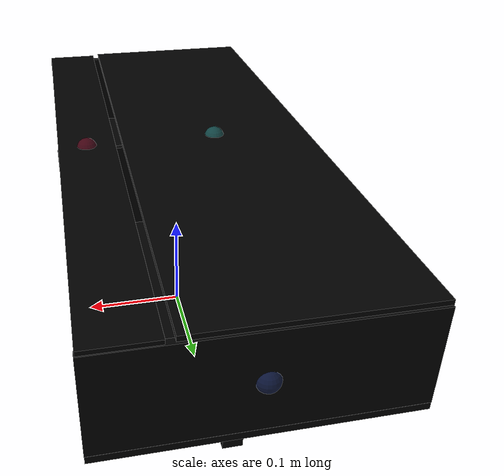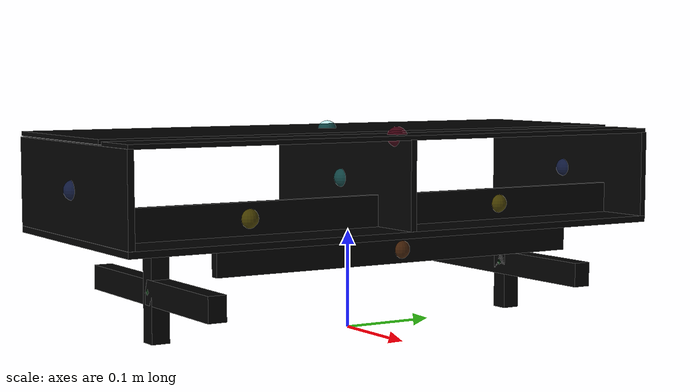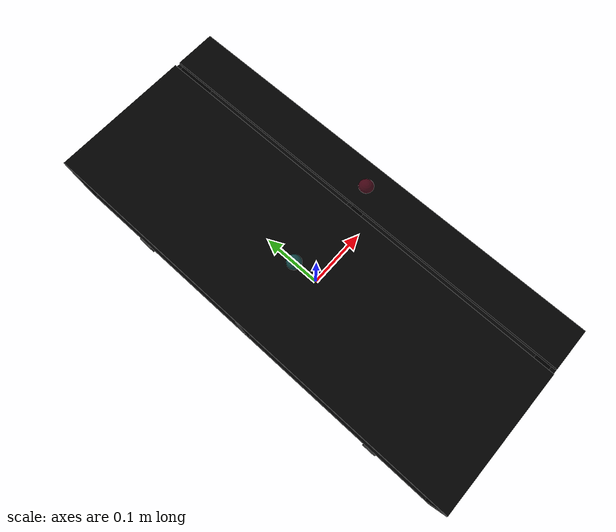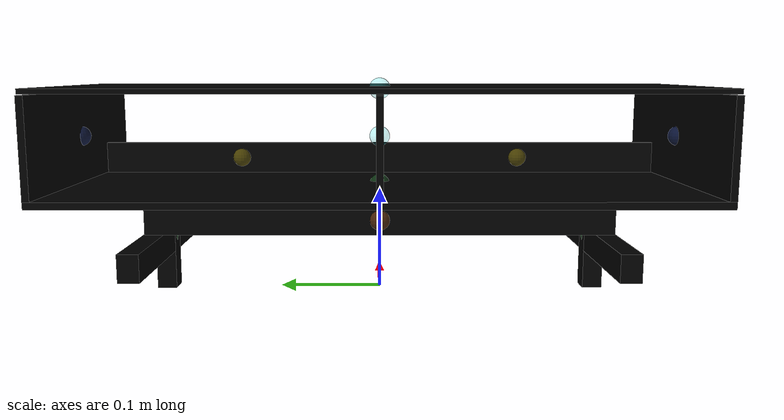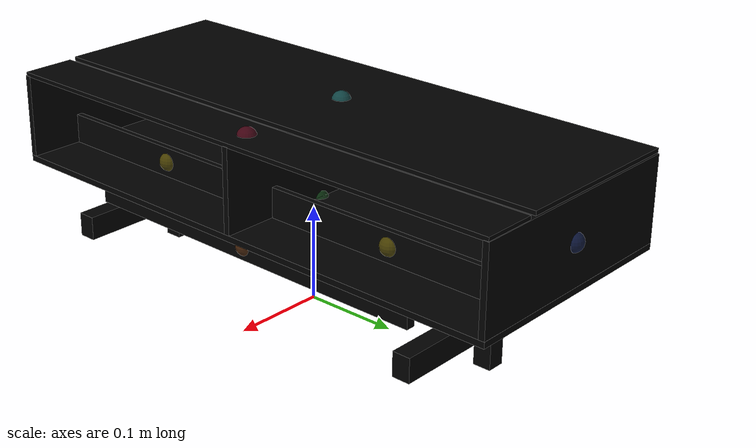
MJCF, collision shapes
<mujoco model="table_liden_0921">
  <asset>
    <mesh file="table_liden_0921/0.stl" name="part0" scale="0.0005 0.0005 0.0005" />
    <mesh file="table_liden_0921/9.stl" name="part9" scale="0.0005 0.0005 0.0005" />
    <mesh file="table_liden_0921/8.stl" name="part8" scale="0.0005 0.0005 0.0005" />
    <mesh file="table_liden_0921/7.stl" name="part7" scale="0.0005 0.0005 0.0005" />
    <mesh file="table_liden_0921/6.stl" name="part6" scale="0.0005 0.0005 0.0005" />
    <mesh file="table_liden_0921/5.stl" name="part5" scale="0.0005 0.0005 0.0005" />
    <mesh file="table_liden_0921/4.stl" name="part4" scale="0.0005 0.0005 0.0005" />
    <mesh file="table_liden_0921/3.stl" name="part3" scale="0.0005 0.0005 0.0005" />
    <mesh file="table_liden_0921/2.stl" name="part2" scale="0.0005 0.0005 0.0005" />
    <mesh file="table_liden_0921/11.stl" name="part11" scale="0.0005 0.0005 0.0005" />
    <mesh file="table_liden_0921/10.stl" name="part10" scale="0.0005 0.0005 0.0005" />
    <mesh file="table_liden_0921/1.stl" name="part1" scale="0.0005 0.0005 0.0005" />
  </asset>
  <worldbody><body name="combined_body" pos="0.09 0 0.19979999923706055" quat="1 0 0 0"><geom conaffinity="0" contype="0" density="0" mesh="part0" name="0_part0_mesh" pos="0.0 2e-09 0.0" rgba="0.82 0.71 0.55 1" type="mesh" quat="1 0 0 0" />
      <geom density="50" name="noviz_collision_0_part0_0" pos="0.0 2e-09 0.0" quat="1 0 0 0" rgba="0 0 0 0" size="0.02825 0.2975 0.0022500000000000003" solref="0.001 1" type="box" />
      <site name="0_part0_horizontal_radius_site" pos="0.0 2e-09 0.0" quat="1 0 0 0" rgba="0 0 0 0" size="0.0005" />
      <site name="0_part0_top_site" pos="0.0 2e-09 0.0" quat="1 0 0 0" rgba="0 0 0 0" size="0.0005" />
      <site name="0_part0_bottom_site" pos="0.0 2e-09 0.0" quat="1 0 0 0" rgba="0 0 0 0" size="0.0005" />
      <site name="0_part0_corner_site8" pos="0.0 2e-09 0.0" quat="1 0 0 0" rgba="0 0 0 0" size="0.01" />
      <site name="0_part0_corner_site7" pos="0.0 2e-09 0.0" quat="1 0 0 0" rgba="0 0 0 0" size="0.01" />
      <site name="0_part0_corner_site6" pos="0.0 2e-09 0.0" quat="1 0 0 0" rgba="0 0 0 0" size="0.01" />
      <site name="0_part0_corner_site5" pos="0.0 2e-09 0.0" quat="1 0 0 0" rgba="0 0 0 0" size="0.01" />
      <site name="0_part0_corner_site4" pos="0.0 2e-09 0.0" quat="1 0 0 0" rgba="0 0 0 0" size="0.01" />
      <site name="0_part0_corner_site3" pos="0.0 2e-09 0.0" quat="1 0 0 0" rgba="0 0 0 0" size="0.01" />
      <site name="0_part0_corner_site2" pos="0.0 2e-09 0.0" quat="1 0 0 0" rgba="0 0 0 0" size="0.01" />
      <site name="0_part0_corner_site1" pos="0.0 2e-09 0.0" quat="1 0 0 0" rgba="0 0 0 0" size="0.01" />
      <site name="thintop-middle,0,180,conn_site1" pos="0.0 2e-09 0.0" quat="1 0 0 0" rgba="0.9019 0.0980 0.2941 0.3" size="0.01" />
    <geom conaffinity="0" contype="0" density="0" mesh="part9" name="11_part9_mesh" pos="-0.0984249954 2e-09 -0.09358261059999999" rgba="0.82 0.71 0.55 1" type="mesh" quat="1 0 0 0" />
      <geom density="50" name="noviz_collision_11_part9_0" pos="-0.0984249954 2e-09 -0.09358261059999999" quat="1 0 0 0" rgba="0 0 0 0" size="0.127 0.29845004999999997 0.0031975099999999998" solref="0.001 1" type="box" />
      <site name="11_part9_horizontal_radius_site" pos="-0.0984249954 2e-09 -0.09358261059999999" quat="1 0 0 0" rgba="0 0 0 0" size="0.0005" />
      <site name="11_part9_top_site" pos="-0.0984249954 2e-09 -0.09358261059999999" quat="1 0 0 0" rgba="0 0 0 0" size="0.0005" />
      <site name="11_part9_bottom_site" pos="-0.0984249954 2e-09 -0.09358261059999999" quat="1 0 0 0" rgba="0 0 0 0" size="0.0005" />
      <site name="11_part9_corner_site8" pos="-0.0984249954 2e-09 -0.09358261059999999" quat="1 0 0 0" rgba="0 0 0 0" size="0.01" />
      <site name="11_part9_corner_site7" pos="-0.0984249954 2e-09 -0.09358261059999999" quat="1 0 0 0" rgba="0 0 0 0" size="0.01" />
      <site name="11_part9_corner_site6" pos="-0.0984249954 2e-09 -0.09358261059999999" quat="1 0 0 0" rgba="0 0 0 0" size="0.01" />
      <site name="11_part9_corner_site5" pos="-0.0984249954 2e-09 -0.09358261059999999" quat="1 0 0 0" rgba="0 0 0 0" size="0.01" />
      <site name="11_part9_corner_site4" pos="-0.0984249954 2e-09 -0.09358261059999999" quat="1 0 0 0" rgba="0 0 0 0" size="0.01" />
      <site name="11_part9_corner_site3" pos="-0.0984249954 2e-09 -0.09358261059999999" quat="1 0 0 0" rgba="0 0 0 0" size="0.01" />
      <site name="11_part9_corner_site2" pos="-0.0984249954 2e-09 -0.09358261059999999" quat="1 0 0 0" rgba="0 0 0 0" size="0.01" />
      <site name="11_part9_corner_site1" pos="-0.0984249954 2e-09 -0.09358261059999999" quat="1 0 0 0" rgba="0 0 0 0" size="0.01" />
      <site name="floor-foot,0,conn_site2" pos="-0.0984249954 2e-09 -0.09358261059999999" quat="1 0 0 0" rgba="0.2352 0.7058 0.2941 0.3" size="0.01" />
      <site name="floor-foot,0,conn_site1" pos="-0.0984249954 2e-09 -0.09358261059999999" quat="1 0 0 0" rgba="0.2352 0.7058 0.2941 0.3" size="0.01" />
      <site name="floor-smallmiddle,0,conn_site2" pos="-0.0984249954 2e-09 -0.09358261059999999" quat="1 0 0 0" rgba="1.0 0.8823 0.0980 0.3" size="0.01" />
      <site name="floor-smallmiddle,0,conn_site1" pos="-0.0984249954 2e-09 -0.09358261059999999" quat="1 0 0 0" rgba="1.0 0.8823 0.0980 0.3" size="0.01" />
      <site name="floor-sidewall,0,conn_site2" pos="-0.0984249954 2e-09 -0.09358261059999999" quat="1 0 0 0" rgba="0.2627 0.3882 0.8470 0.3" size="0.01" />
      <site name="floor-sidewall,0,conn_site1" pos="-0.0984249954 2e-09 -0.09358261059999999" quat="1 0 0 0" rgba="0.2627 0.3882 0.8470 0.3" size="0.01" />
    <geom conaffinity="0" contype="0" density="0" mesh="part8" name="10_part8_mesh" pos="-0.20161250014999998 2e-09 -0.10945761155" rgba="0.82 0.71 0.55 1" type="mesh" quat="1 0 0 0" />
      <geom density="50" name="noviz_collision_10_part8_0" pos="-0.20161250014999998 2e-09 -0.10945761155" quat="1 0 0 0" rgba="0 0 0 0" size="0.004762495 0.20320005000000002 0.013027335000000001" solref="0.001 1" type="box" />
      <site name="10_part8_horizontal_radius_site" pos="-0.20161250014999998 2e-09 -0.10945761155" quat="1 0 0 0" rgba="0 0 0 0" size="0.0005" />
      <site name="10_part8_top_site" pos="-0.20161250014999998 2e-09 -0.10945761155" quat="1 0 0 0" rgba="0 0 0 0" size="0.0005" />
      <site name="10_part8_bottom_site" pos="-0.20161250014999998 2e-09 -0.10945761155" quat="1 0 0 0" rgba="0 0 0 0" size="0.0005" />
      <site name="10_part8_corner_site8" pos="-0.20161250014999998 2e-09 -0.10945761155" quat="1 0 0 0" rgba="0 0 0 0" size="0.01" />
      <site name="10_part8_corner_site7" pos="-0.20161250014999998 2e-09 -0.10945761155" quat="1 0 0 0" rgba="0 0 0 0" size="0.01" />
      <site name="10_part8_corner_site6" pos="-0.20161250014999998 2e-09 -0.10945761155" quat="1 0 0 0" rgba="0 0 0 0" size="0.01" />
      <site name="10_part8_corner_site5" pos="-0.20161250014999998 2e-09 -0.10945761155" quat="1 0 0 0" rgba="0 0 0 0" size="0.01" />
      <site name="10_part8_corner_site4" pos="-0.20161250014999998 2e-09 -0.10945761155" quat="1 0 0 0" rgba="0 0 0 0" size="0.01" />
      <site name="10_part8_corner_site3" pos="-0.20161250014999998 2e-09 -0.10945761155" quat="1 0 0 0" rgba="0 0 0 0" size="0.01" />
      <site name="10_part8_corner_site2" pos="-0.20161250014999998 2e-09 -0.10945761155" quat="1 0 0 0" rgba="0 0 0 0" size="0.01" />
      <site name="10_part8_corner_site1" pos="-0.20161250014999998 2e-09 -0.10945761155" quat="1 0 0 0" rgba="0 0 0 0" size="0.01" />
      <site name="left-foot,0,180,conn_site2" pos="-0.20161250014999998 2e-09 -0.10945761155" quat="1 0 0 0" rgba="0.9607 0.5098 0.1921 0.3" size="0.01" />
      <site name="right-foot,0,180,conn_site2" pos="-0.20161250014999998 2e-09 -0.10945761155" quat="1 0 0 0" rgba="0.5686 0.1176 0.7058 0.3" size="0.01" />
    <geom conaffinity="0" contype="0" density="0" mesh="part7" name="9_part7_mesh" pos="0.00476249985 2e-09 -0.10945761155" rgba="0.82 0.71 0.55 1" type="mesh" quat="1 0 0 0" />
      <geom density="50" name="noviz_collision_9_part7_0" pos="0.00476249985 2e-09 -0.10945761155" quat="1 0 0 0" rgba="0 0 0 0" size="0.0047625 0.20320005000000002 0.013027335000000001" solref="0.001 1" type="box" />
      <site name="9_part7_horizontal_radius_site" pos="0.00476249985 2e-09 -0.10945761155" quat="1 0 0 0" rgba="0 0 0 0" size="0.0005" />
      <site name="9_part7_top_site" pos="0.00476249985 2e-09 -0.10945761155" quat="1 0 0 0" rgba="0 0 0 0" size="0.0005" />
      <site name="9_part7_bottom_site" pos="0.00476249985 2e-09 -0.10945761155" quat="1 0 0 0" rgba="0 0 0 0" size="0.0005" />
      <site name="9_part7_corner_site8" pos="0.00476249985 2e-09 -0.10945761155" quat="1 0 0 0" rgba="0 0 0 0" size="0.01" />
      <site name="9_part7_corner_site7" pos="0.00476249985 2e-09 -0.10945761155" quat="1 0 0 0" rgba="0 0 0 0" size="0.01" />
      <site name="9_part7_corner_site6" pos="0.00476249985 2e-09 -0.10945761155" quat="1 0 0 0" rgba="0 0 0 0" size="0.01" />
      <site name="9_part7_corner_site5" pos="0.00476249985 2e-09 -0.10945761155" quat="1 0 0 0" rgba="0 0 0 0" size="0.01" />
      <site name="9_part7_corner_site4" pos="0.00476249985 2e-09 -0.10945761155" quat="1 0 0 0" rgba="0 0 0 0" size="0.01" />
      <site name="9_part7_corner_site3" pos="0.00476249985 2e-09 -0.10945761155" quat="1 0 0 0" rgba="0 0 0 0" size="0.01" />
      <site name="9_part7_corner_site2" pos="0.00476249985 2e-09 -0.10945761155" quat="1 0 0 0" rgba="0 0 0 0" size="0.01" />
      <site name="9_part7_corner_site1" pos="0.00476249985 2e-09 -0.10945761155" quat="1 0 0 0" rgba="0 0 0 0" size="0.01" />
      <site name="left-foot,0,180,conn_site1" pos="0.00476249985 2e-09 -0.10945761155" quat="1 0 0 0" rgba="0.9607 0.5098 0.1921 0.3" size="0.01" />
      <site name="right-foot,0,180,conn_site1" pos="0.00476249985 2e-09 -0.10945761155" quat="1 0 0 0" rgba="0.5686 0.1176 0.7058 0.3" size="0.01" />
    <geom conaffinity="0" contype="0" density="0" mesh="part6" name="8_part6_mesh" pos="-0.0984249954 -0.295275 -0.0459576084" rgba="0.82 0.71 0.55 1" type="mesh" quat="1 0 0 0" />
      <geom density="50" name="noviz_collision_8_part6_0" pos="-0.0984249954 -0.295275 -0.0459576084" quat="1 0 0 0" rgba="0 0 0 0" size="0.12720955 0.00318088 0.04428435000000001" solref="0.001 1" type="box" />
      <site name="8_part6_horizontal_radius_site" pos="-0.0984249954 -0.295275 -0.0459576084" quat="1 0 0 0" rgba="0 0 0 0" size="0.0005" />
      <site name="8_part6_top_site" pos="-0.0984249954 -0.295275 -0.0459576084" quat="1 0 0 0" rgba="0 0 0 0" size="0.0005" />
      <site name="8_part6_bottom_site" pos="-0.0984249954 -0.295275 -0.0459576084" quat="1 0 0 0" rgba="0 0 0 0" size="0.0005" />
      <site name="8_part6_corner_site8" pos="-0.0984249954 -0.295275 -0.0459576084" quat="1 0 0 0" rgba="0 0 0 0" size="0.01" />
      <site name="8_part6_corner_site7" pos="-0.0984249954 -0.295275 -0.0459576084" quat="1 0 0 0" rgba="0 0 0 0" size="0.01" />
      <site name="8_part6_corner_site6" pos="-0.0984249954 -0.295275 -0.0459576084" quat="1 0 0 0" rgba="0 0 0 0" size="0.01" />
      <site name="8_part6_corner_site5" pos="-0.0984249954 -0.295275 -0.0459576084" quat="1 0 0 0" rgba="0 0 0 0" size="0.01" />
      <site name="8_part6_corner_site4" pos="-0.0984249954 -0.295275 -0.0459576084" quat="1 0 0 0" rgba="0 0 0 0" size="0.01" />
      <site name="8_part6_corner_site3" pos="-0.0984249954 -0.295275 -0.0459576084" quat="1 0 0 0" rgba="0 0 0 0" size="0.01" />
      <site name="8_part6_corner_site2" pos="-0.0984249954 -0.295275 -0.0459576084" quat="1 0 0 0" rgba="0 0 0 0" size="0.01" />
      <site name="8_part6_corner_site1" pos="-0.0984249954 -0.295275 -0.0459576084" quat="1 0 0 0" rgba="0 0 0 0" size="0.01" />
      <site name="sidewall-floor,0,conn_site1" pos="-0.0984249954 -0.295275 -0.0459576084" quat="1 0 0 0" rgba="0.2627 0.3882 0.8470 0.3" size="0.01" />
    <geom conaffinity="0" contype="0" density="0" mesh="part5" name="7_part5_mesh" pos="-0.0984249954 0.29527501619999996 -0.0459576084" rgba="0.82 0.71 0.55 1" type="mesh" quat="1 0 0 0" />
      <geom density="50" name="noviz_collision_7_part5_0" pos="-0.0984249954 0.29527501619999996 -0.0459576084" quat="1 0 0 0" rgba="0 0 0 0" size="0.1272068 0.0031692200000000004 0.04429362" solref="0.001 1" type="box" />
      <site name="7_part5_horizontal_radius_site" pos="-0.0984249954 0.29527501619999996 -0.0459576084" quat="1 0 0 0" rgba="0 0 0 0" size="0.0005" />
      <site name="7_part5_top_site" pos="-0.0984249954 0.29527501619999996 -0.0459576084" quat="1 0 0 0" rgba="0 0 0 0" size="0.0005" />
      <site name="7_part5_bottom_site" pos="-0.0984249954 0.29527501619999996 -0.0459576084" quat="1 0 0 0" rgba="0 0 0 0" size="0.0005" />
      <site name="7_part5_corner_site8" pos="-0.0984249954 0.29527501619999996 -0.0459576084" quat="1 0 0 0" rgba="0 0 0 0" size="0.01" />
      <site name="7_part5_corner_site7" pos="-0.0984249954 0.29527501619999996 -0.0459576084" quat="1 0 0 0" rgba="0 0 0 0" size="0.01" />
      <site name="7_part5_corner_site6" pos="-0.0984249954 0.29527501619999996 -0.0459576084" quat="1 0 0 0" rgba="0 0 0 0" size="0.01" />
      <site name="7_part5_corner_site5" pos="-0.0984249954 0.29527501619999996 -0.0459576084" quat="1 0 0 0" rgba="0 0 0 0" size="0.01" />
      <site name="7_part5_corner_site4" pos="-0.0984249954 0.29527501619999996 -0.0459576084" quat="1 0 0 0" rgba="0 0 0 0" size="0.01" />
      <site name="7_part5_corner_site3" pos="-0.0984249954 0.29527501619999996 -0.0459576084" quat="1 0 0 0" rgba="0 0 0 0" size="0.01" />
      <site name="7_part5_corner_site2" pos="-0.0984249954 0.29527501619999996 -0.0459576084" quat="1 0 0 0" rgba="0 0 0 0" size="0.01" />
      <site name="7_part5_corner_site1" pos="-0.0984249954 0.29527501619999996 -0.0459576084" quat="1 0 0 0" rgba="0 0 0 0" size="0.01" />
      <site name="sidewall-floor,0,conn_site2" pos="-0.0984249954 0.29527501619999996 -0.0459576084" quat="1 0 0 0" rgba="0.2627 0.3882 0.8470 0.3" size="0.01" />
    <geom conaffinity="0" contype="0" density="0" mesh="part4" name="6_part4_mesh" pos="-0.03175000015 0.14763750820000002 -0.07453261159999999" rgba="0.82 0.71 0.55 1" type="mesh" quat="1 0 0 0" />
      <geom density="50" name="noviz_collision_6_part4_0" pos="-0.03175000015 0.14763750820000002 -0.07453261159999999" quat="1 0 0 0" rgba="0 0 0 0" size="0.003175 0.14431115 0.01588411" solref="0.001 1" type="box" />
      <site name="6_part4_horizontal_radius_site" pos="-0.03175000015 0.14763750820000002 -0.07453261159999999" quat="1 0 0 0" rgba="0 0 0 0" size="0.0005" />
      <site name="6_part4_top_site" pos="-0.03175000015 0.14763750820000002 -0.07453261159999999" quat="1 0 0 0" rgba="0 0 0 0" size="0.0005" />
      <site name="6_part4_bottom_site" pos="-0.03175000015 0.14763750820000002 -0.07453261159999999" quat="1 0 0 0" rgba="0 0 0 0" size="0.0005" />
      <site name="6_part4_corner_site8" pos="-0.03175000015 0.14763750820000002 -0.07453261159999999" quat="1 0 0 0" rgba="0 0 0 0" size="0.01" />
      <site name="6_part4_corner_site7" pos="-0.03175000015 0.14763750820000002 -0.07453261159999999" quat="1 0 0 0" rgba="0 0 0 0" size="0.01" />
      <site name="6_part4_corner_site6" pos="-0.03175000015 0.14763750820000002 -0.07453261159999999" quat="1 0 0 0" rgba="0 0 0 0" size="0.01" />
      <site name="6_part4_corner_site5" pos="-0.03175000015 0.14763750820000002 -0.07453261159999999" quat="1 0 0 0" rgba="0 0 0 0" size="0.01" />
      <site name="6_part4_corner_site4" pos="-0.03175000015 0.14763750820000002 -0.07453261159999999" quat="1 0 0 0" rgba="0 0 0 0" size="0.01" />
      <site name="6_part4_corner_site3" pos="-0.03175000015 0.14763750820000002 -0.07453261159999999" quat="1 0 0 0" rgba="0 0 0 0" size="0.01" />
      <site name="6_part4_corner_site2" pos="-0.03175000015 0.14763750820000002 -0.07453261159999999" quat="1 0 0 0" rgba="0 0 0 0" size="0.01" />
      <site name="6_part4_corner_site1" pos="-0.03175000015 0.14763750820000002 -0.07453261159999999" quat="1 0 0 0" rgba="0 0 0 0" size="0.01" />
      <site name="smallmiddle-floor,0,conn_site2" pos="-0.03175000015 0.14763750820000002 -0.07453261159999999" quat="1 0 0 0" rgba="1.0 0.8823 0.0980 0.3" size="0.01" />
    <geom conaffinity="0" contype="0" density="0" mesh="part3" name="5_part3_mesh" pos="-0.03175000015 -0.14763751020000002 -0.07453261159999999" rgba="0.82 0.71 0.55 1" type="mesh" quat="1 0 0 0" />
      <geom density="50" name="noviz_collision_5_part3_0" pos="-0.03175000015 -0.14763751020000002 -0.07453261159999999" quat="1 0 0 0" rgba="0 0 0 0" size="0.003175 0.14450065 0.01586463" solref="0.001 1" type="box" />
      <site name="5_part3_horizontal_radius_site" pos="-0.03175000015 -0.14763751020000002 -0.07453261159999999" quat="1 0 0 0" rgba="0 0 0 0" size="0.0005" />
      <site name="5_part3_top_site" pos="-0.03175000015 -0.14763751020000002 -0.07453261159999999" quat="1 0 0 0" rgba="0 0 0 0" size="0.0005" />
      <site name="5_part3_bottom_site" pos="-0.03175000015 -0.14763751020000002 -0.07453261159999999" quat="1 0 0 0" rgba="0 0 0 0" size="0.0005" />
      <site name="5_part3_corner_site8" pos="-0.03175000015 -0.14763751020000002 -0.07453261159999999" quat="1 0 0 0" rgba="0 0 0 0" size="0.01" />
      <site name="5_part3_corner_site7" pos="-0.03175000015 -0.14763751020000002 -0.07453261159999999" quat="1 0 0 0" rgba="0 0 0 0" size="0.01" />
      <site name="5_part3_corner_site6" pos="-0.03175000015 -0.14763751020000002 -0.07453261159999999" quat="1 0 0 0" rgba="0 0 0 0" size="0.01" />
      <site name="5_part3_corner_site5" pos="-0.03175000015 -0.14763751020000002 -0.07453261159999999" quat="1 0 0 0" rgba="0 0 0 0" size="0.01" />
      <site name="5_part3_corner_site4" pos="-0.03175000015 -0.14763751020000002 -0.07453261159999999" quat="1 0 0 0" rgba="0 0 0 0" size="0.01" />
      <site name="5_part3_corner_site3" pos="-0.03175000015 -0.14763751020000002 -0.07453261159999999" quat="1 0 0 0" rgba="0 0 0 0" size="0.01" />
      <site name="5_part3_corner_site2" pos="-0.03175000015 -0.14763751020000002 -0.07453261159999999" quat="1 0 0 0" rgba="0 0 0 0" size="0.01" />
      <site name="5_part3_corner_site1" pos="-0.03175000015 -0.14763751020000002 -0.07453261159999999" quat="1 0 0 0" rgba="0 0 0 0" size="0.01" />
      <site name="smallmiddle-floor,0,conn_site1" pos="-0.03175000015 -0.14763751020000002 -0.07453261159999999" quat="1 0 0 0" rgba="1.0 0.8823 0.0980 0.3" size="0.01" />
    <geom conaffinity="0" contype="0" density="1" mesh="part2" name="4_part2_mesh" pos="-0.1301749954 2e-09 0.0016673901" rgba="0.82 0.71 0.55 1" type="mesh" quat="1 0 0 0" />
      <geom density="50" name="noviz_collision_4_part2_0" pos="-0.1301749954 2e-09 0.0016673901" quat="1 0 0 0" rgba="0 0 0 0" size="0.095 0.2975 0.0022500000000000003" solref="0.001 1" type="box" />
    <site name="4_part2_horizontal_radius_site" pos="-0.1301749954 2e-09 0.0016673901" quat="1 0 0 0" rgba="0 0 0 0" size="0.0005" />
      <site name="4_part2_top_site" pos="-0.1301749954 2e-09 0.0016673901" quat="1 0 0 0" rgba="0 0 0 0" size="0.0005" />
      <site name="4_part2_bottom_site" pos="-0.1301749954 2e-09 0.0016673901" quat="1 0 0 0" rgba="0 0 0 0" size="0.0005" />
      <site name="4_part2_corner_site8" pos="-0.1301749954 2e-09 0.0016673901" quat="1 0 0 0" rgba="0 0 0 0" size="0.01" />
      <site name="4_part2_corner_site7" pos="-0.1301749954 2e-09 0.0016673901" quat="1 0 0 0" rgba="0 0 0 0" size="0.01" />
      <site name="4_part2_corner_site6" pos="-0.1301749954 2e-09 0.0016673901" quat="1 0 0 0" rgba="0 0 0 0" size="0.01" />
      <site name="4_part2_corner_site5" pos="-0.1301749954 2e-09 0.0016673901" quat="1 0 0 0" rgba="0 0 0 0" size="0.01" />
      <site name="4_part2_corner_site4" pos="-0.1301749954 2e-09 0.0016673901" quat="1 0 0 0" rgba="0 0 0 0" size="0.01" />
      <site name="4_part2_corner_site3" pos="-0.1301749954 2e-09 0.0016673901" quat="1 0 0 0" rgba="0 0 0 0" size="0.01" />
      <site name="4_part2_corner_site2" pos="-0.1301749954 2e-09 0.0016673901" quat="1 0 0 0" rgba="0 0 0 0" size="0.01" />
      <site name="4_part2_corner_site1" pos="-0.1301749954 2e-09 0.0016673901" quat="1 0 0 0" rgba="0 0 0 0" size="0.01" />
      <site name="top-middle,0,180,conn_site1" pos="-0.1301749954 2e-09 0.0016673901" quat="1 0 0 0" rgba="0.2745 0.9411 0.9411 0.3" size="0.01" />
      <geom conaffinity="0" contype="0" density="0" mesh="part11" name="3_part11_mesh" pos="-0.0984249954 -0.21272502445000002 -0.1475576099" rgba="0.82 0.71 0.55 1" type="mesh" quat="1 0 0 0" />
      <geom density="50" name="noviz_collision_3_part11_0" pos="-0.0984249954 -0.21272502445000002 -0.1475576099" quat="1 0 0 0" rgba="0 0 0 0" size="0.127 0.0094599 0.0125" solref="0.001 1" type="box" />
      <geom density="50" name="noviz_collision_3_part11_1" pos="-0.0984249954 -0.21272502445000002 -0.1475576099" quat="1 0 0 0" rgba="0 0 0 0" size="0.00925 0.0094599 0.05" solref="0.001 1" type="box" />
      <geom density="50" name="noviz_collision_3_part11_2" pos="-0.0984249954 -0.21272502445000002 -0.1475576099" quat="1 0 0 0" rgba="0 0 0 0" size="0.00925 0.0094599 0.05" solref="0.001 1" type="box" />
      <site name="3_part11_horizontal_radius_site" pos="-0.0984249954 -0.21272502445000002 -0.1475576099" quat="1 0 0 0" rgba="0 0 0 0" size="0.0005" />
      <site name="3_part11_top_site" pos="-0.0984249954 -0.21272502445000002 -0.1475576099" quat="1 0 0 0" rgba="0 0 0 0" size="0.0005" />
      <site name="3_part11_bottom_site" pos="-0.0984249954 -0.21272502445000002 -0.1475576099" quat="1 0 0 0" rgba="0 0 0 0" size="0.0005" />
      <site name="3_part11_corner_site8" pos="-0.0984249954 -0.21272502445000002 -0.1475576099" quat="1 0 0 0" rgba="0 0 0 0" size="0.01" />
      <site name="3_part11_corner_site7" pos="-0.0984249954 -0.21272502445000002 -0.1475576099" quat="1 0 0 0" rgba="0 0 0 0" size="0.01" />
      <site name="3_part11_corner_site6" pos="-0.0984249954 -0.21272502445000002 -0.1475576099" quat="1 0 0 0" rgba="0 0 0 0" size="0.01" />
      <site name="3_part11_corner_site5" pos="-0.0984249954 -0.21272502445000002 -0.1475576099" quat="1 0 0 0" rgba="0 0 0 0" size="0.01" />
      <site name="3_part11_corner_site4" pos="-0.0984249954 -0.21272502445000002 -0.1475576099" quat="1 0 0 0" rgba="0 0 0 0" size="0.01" />
      <site name="3_part11_corner_site3" pos="-0.0984249954 -0.21272502445000002 -0.1475576099" quat="1 0 0 0" rgba="0 0 0 0" size="0.01" />
      <site name="3_part11_corner_site2" pos="-0.0984249954 -0.21272502445000002 -0.1475576099" quat="1 0 0 0" rgba="0 0 0 0" size="0.01" />
      <site name="3_part11_corner_site1" pos="-0.0984249954 -0.21272502445000002 -0.1475576099" quat="1 0 0 0" rgba="0 0 0 0" size="0.01" />
      <site name="foot-floor,0,conn_site1" pos="-0.0984249954 -0.21272502445000002 -0.1475576099" quat="1 0 0 0" rgba="0.2352 0.7058 0.2941 0.3" size="0.01" />
      <site name="foot-right,0,180,conn_site2" pos="-0.0984249954 -0.21272502445000002 -0.1475576099" quat="1 0 0 0" rgba="0.5686 0.1176 0.7058 0.3" size="0.01" />
      <site name="foot-left,0,180,conn_site1" pos="-0.0984249954 -0.21272502445000002 -0.1475576099" quat="1 0 0 0" rgba="0.9607 0.5098 0.1921 0.3" size="0.01" />
    <geom conaffinity="0" contype="0" density="0" mesh="part10" name="2_part10_mesh" pos="-0.0984249954 0.212725012 -0.1475576099" rgba="0.82 0.71 0.55 1" type="mesh" quat="1 0 0 0" />
      <geom density="50" name="noviz_collision_2_part10_0" pos="-0.0984249954 0.212725012 -0.1475576099" quat="1 0 0 0" rgba="0 0 0 0" size="0.127 0.0094599 0.0125" solref="0.001 1" type="box" />
      <geom density="50" name="noviz_collision_2_part10_1" pos="-0.0984249954 0.212725012 -0.1475576099" quat="1 0 0 0" rgba="0 0 0 0" size="0.00925 0.0094599 0.05" solref="0.001 1" type="box" />
      <geom density="50" name="noviz_collision_2_part10_2" pos="-0.0984249954 0.212725012 -0.1475576099" quat="1 0 0 0" rgba="0 0 0 0" size="0.00925 0.0094599 0.05" solref="0.001 1" type="box" />
      <site name="2_part10_horizontal_radius_site" pos="-0.0984249954 0.212725012 -0.1475576099" quat="1 0 0 0" rgba="0 0 0 0" size="0.0005" />
      <site name="2_part10_top_site" pos="-0.0984249954 0.212725012 -0.1475576099" quat="1 0 0 0" rgba="0 0 0 0" size="0.0005" />
      <site name="2_part10_bottom_site" pos="-0.0984249954 0.212725012 -0.1475576099" quat="1 0 0 0" rgba="0 0 0 0" size="0.0005" />
      <site name="2_part10_corner_site8" pos="-0.0984249954 0.212725012 -0.1475576099" quat="1 0 0 0" rgba="0 0 0 0" size="0.01" />
      <site name="2_part10_corner_site7" pos="-0.0984249954 0.212725012 -0.1475576099" quat="1 0 0 0" rgba="0 0 0 0" size="0.01" />
      <site name="2_part10_corner_site6" pos="-0.0984249954 0.212725012 -0.1475576099" quat="1 0 0 0" rgba="0 0 0 0" size="0.01" />
      <site name="2_part10_corner_site5" pos="-0.0984249954 0.212725012 -0.1475576099" quat="1 0 0 0" rgba="0 0 0 0" size="0.01" />
      <site name="2_part10_corner_site4" pos="-0.0984249954 0.212725012 -0.1475576099" quat="1 0 0 0" rgba="0 0 0 0" size="0.01" />
      <site name="2_part10_corner_site3" pos="-0.0984249954 0.212725012 -0.1475576099" quat="1 0 0 0" rgba="0 0 0 0" size="0.01" />
      <site name="2_part10_corner_site2" pos="-0.0984249954 0.212725012 -0.1475576099" quat="1 0 0 0" rgba="0 0 0 0" size="0.01" />
      <site name="2_part10_corner_site1" pos="-0.0984249954 0.212725012 -0.1475576099" quat="1 0 0 0" rgba="0 0 0 0" size="0.01" />
      <site name="foot-floor,0,conn_site2" pos="-0.0984249954 0.212725012 -0.1475576099" quat="1 0 0 0" rgba="0.2352 0.7058 0.2941 0.3" size="0.01" />
      <site name="foot-left,0,180,conn_site2" pos="-0.0984249954 0.212725012 -0.1475576099" quat="1 0 0 0" rgba="0.9607 0.5098 0.1921 0.3" size="0.01" />
      <site name="foot-right,0,180,conn_site1" pos="-0.0984249954 0.212725012 -0.1475576099" quat="1 0 0 0" rgba="0.5686 0.1176 0.7058 0.3" size="0.01" />
    <geom conaffinity="0" contype="0" density="0" mesh="part1" name="1_part1_mesh" pos="-0.0984249954 1.22e-08 -0.0459576084" rgba="0.82 0.71 0.55 1" type="mesh" quat="1 0 0 0" />
      <geom density="50" name="noviz_collision_1_part1_0" pos="-0.0984249954 1.22e-08 -0.0459576084" quat="1 0 0 0" rgba="0 0 0 0" size="0.12734890000000001 0.00317501 0.044292490000000004" solref="0.001 1" type="box" />
      <site name="1_part1_horizontal_radius_site" pos="-0.0984249954 1.22e-08 -0.0459576084" quat="1 0 0 0" rgba="0 0 0 0" size="0.0005" />
      <site name="1_part1_top_site" pos="-0.0984249954 1.22e-08 -0.0459576084" quat="1 0 0 0" rgba="0 0 0 0" size="0.0005" />
      <site name="1_part1_bottom_site" pos="-0.0984249954 1.22e-08 -0.0459576084" quat="1 0 0 0" rgba="0 0 0 0" size="0.0005" />
      <site name="1_part1_corner_site8" pos="-0.0984249954 1.22e-08 -0.0459576084" quat="1 0 0 0" rgba="0 0 0 0" size="0.01" />
      <site name="1_part1_corner_site7" pos="-0.0984249954 1.22e-08 -0.0459576084" quat="1 0 0 0" rgba="0 0 0 0" size="0.01" />
      <site name="1_part1_corner_site6" pos="-0.0984249954 1.22e-08 -0.0459576084" quat="1 0 0 0" rgba="0 0 0 0" size="0.01" />
      <site name="1_part1_corner_site5" pos="-0.0984249954 1.22e-08 -0.0459576084" quat="1 0 0 0" rgba="0 0 0 0" size="0.01" />
      <site name="1_part1_corner_site4" pos="-0.0984249954 1.22e-08 -0.0459576084" quat="1 0 0 0" rgba="0 0 0 0" size="0.01" />
      <site name="1_part1_corner_site3" pos="-0.0984249954 1.22e-08 -0.0459576084" quat="1 0 0 0" rgba="0 0 0 0" size="0.01" />
      <site name="1_part1_corner_site2" pos="-0.0984249954 1.22e-08 -0.0459576084" quat="1 0 0 0" rgba="0 0 0 0" size="0.01" />
      <site name="1_part1_corner_site1" pos="-0.0984249954 1.22e-08 -0.0459576084" quat="1 0 0 0" rgba="0 0 0 0" size="0.01" />
      <site name="middle-top,0,180,conn_site1" pos="-0.0984249954 1.22e-08 -0.0459576084" quat="1 0 0 0" rgba="0.2745 0.9411 0.9411 0.3" size="0.01" />
      <site name="middle-thintop,0,180,conn_site1" pos="-0.0984249954 1.22e-08 -0.0459576084" quat="1 0 0 0" rgba="0.9019 0.0980 0.2941 0.3" size="0.01" />
    </body></worldbody><actuator /><sensor /><contact /><default /></mujoco>
